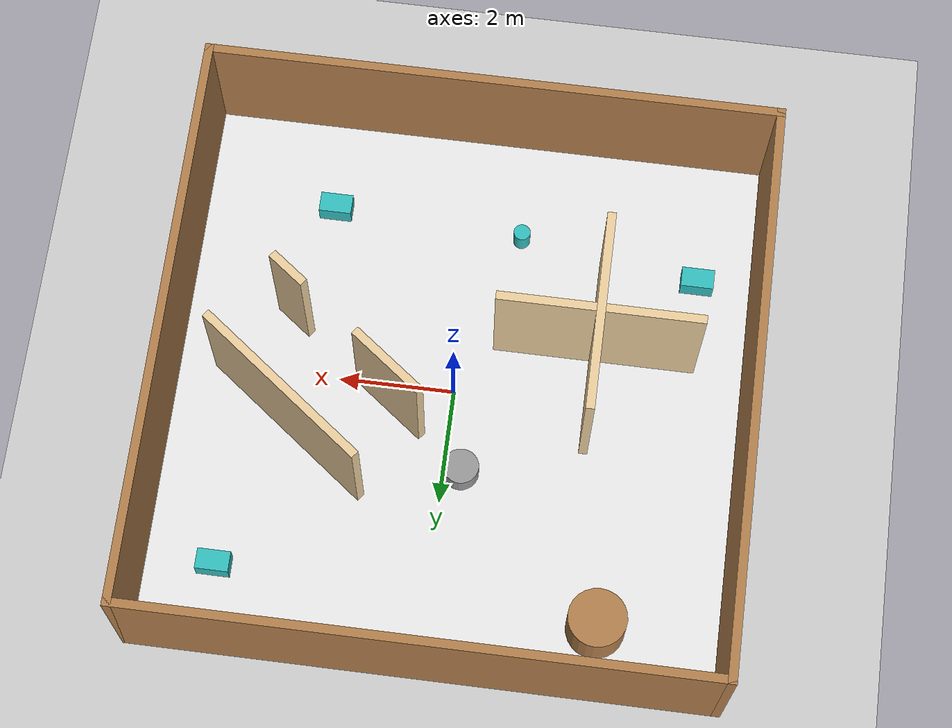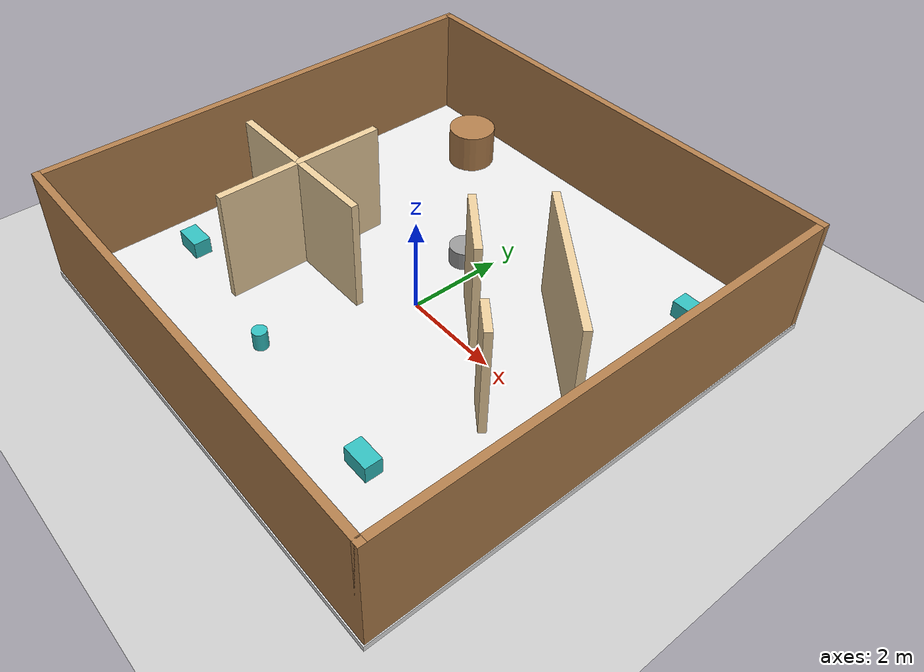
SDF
<sdf version="1.7">
 <world name="default">
  <light name="sun" type="directional">
   <pose>0 0 10 0 -0 0</pose>
   <diffuse>0.8 0.8 0.8 1</diffuse>
   <specular>0.2 0.2 0.2 1</specular>
   <attenuation>
    <range>1000</range>
    <constant>0.9</constant>
    <linear>0.01</linear>
    <quadratic>0.001</quadratic>
   </attenuation>
   <direction>-0.5 0.1 -0.9</direction>
   <spot><inner_angle>0</inner_angle><outer_angle>0</outer_angle><falloff>0</falloff></spot>
  </light>
  <model name="ground_plane">
   <static>1</static>
   <link name="link">
    <collision name="collision">
     <geometry><plane><normal>0 0 1</normal><size>100 100</size></plane></geometry>
     <surface>
      <contact><collide_bitmask>65535</collide_bitmask></contact>
      <friction><ode><mu>100</mu><mu2>50</mu2></ode></friction>
     </surface>
    </collision>
    <visual name="visual">
     <cast_shadows>0</cast_shadows>
     <geometry><plane><normal>0 0 1</normal><size>100 100</size></plane></geometry>
     <material>
      <script><uri>file://media/materials/scripts/gazebo.material</uri><name>Gazebo/Grey</name></script>
     </material>
    </visual>
   </link>
  </model>
  <gravity>0 0 -9.8</gravity>
  <magnetic_field>6e-06 2.3e-05 -4.2e-05</magnetic_field>
  <atmosphere type="adiabatic"/>
  <physics type="ode">
   <max_step_size>0.001</max_step_size>
   <real_time_factor>1</real_time_factor>
   <real_time_update_rate>1000</real_time_update_rate>
  </physics>
  <scene><ambient>0.4 0.4 0.4 1</ambient><background>0.7 0.7 0.7 1</background><shadows>1</shadows></scene>
  <spherical_coordinates>
   <surface_model>EARTH_WGS84</surface_model>
   <latitude_deg>0</latitude_deg>
   <longitude_deg>0</longitude_deg>
   <elevation>0</elevation>
   <heading_deg>0</heading_deg>
  </spherical_coordinates>
  <model name="delimiter">
   <link name="Wall_11">
    <pose>0 4.925 0 0 -0 0</pose>
    <visual name="Wall_11_Visual">
     <pose>0 0 1.25 0 -0 0</pose>
     <geometry><box><size>10 0.15 2.5</size></box></geometry>
     <material>
      <script><uri>file://media/materials/scripts/gazebo.material</uri><name>Gazebo/Wood</name></script>
      <ambient>1 1 1 1</ambient>
      <shader type="pixel"/>
      <emissive>0 0 0 1</emissive>
     </material>
     <meta><layer>0</layer></meta>
    </visual>
    <collision name="Wall_11_Collision">
     <pose>0 0 1.25 0 -0 0</pose>
     <geometry><box><size>10 0.15 2.5</size></box></geometry>
     <surface>
      <friction>
       <ode><mu>1</mu><mu2>1</mu2><fdir1>0 0 0</fdir1><slip1>0</slip1><slip2>0</slip2></ode>
       <torsional>
        <coefficient>1</coefficient>
        <patch_radius>0</patch_radius>
        <surface_radius>0</surface_radius>
        <use_patch_radius>1</use_patch_radius>
        <ode><slip>0</slip></ode>
       </torsional>
      </friction>
      <bounce><restitution_coefficient>0</restitution_coefficient><threshold>1e+06</threshold></bounce>
      <contact>
       <collide_without_contact>0</collide_without_contact>
       <collide_without_contact_bitmask>1</collide_without_contact_bitmask>
       <collide_bitmask>1</collide_bitmask>
       <ode>
        <soft_cfm>0</soft_cfm>
        <soft_erp>0.2</soft_erp>
        <kp>1e+13</kp>
        <kd>1</kd>
        <max_vel>0.01</max_vel>
        <min_depth>0</min_depth>
       </ode>
       <bullet>
        <split_impulse>1</split_impulse>
        <split_impulse_penetration_threshold>-0.01</split_impulse_penetration_threshold>
        <soft_cfm>0</soft_cfm>
        <soft_erp>0.2</soft_erp>
        <kp>1e+13</kp>
        <kd>1</kd>
       </bullet>
      </contact>
     </surface>
    </collision>
   </link>
   <link name="Wall_6">
    <pose>-4.925 0 0 0 -0 1.5708</pose>
    <visual name="Wall_6_Visual">
     <pose>0 0 1.25 0 -0 0</pose>
     <geometry><box><size>10 0.15 2.5</size></box></geometry>
     <material>
      <script><uri>file://media/materials/scripts/gazebo.material</uri><name>Gazebo/Wood</name></script>
      <ambient>1 1 1 1</ambient>
      <shader type="pixel"/>
      <emissive>0 0 0 1</emissive>
     </material>
     <meta><layer>0</layer></meta>
    </visual>
    <collision name="Wall_6_Collision">
     <pose>0 0 1.25 0 -0 0</pose>
     <geometry><box><size>10 0.15 2.5</size></box></geometry>
     <surface>
      <friction>
       <ode><mu>1</mu><mu2>1</mu2><fdir1>0 0 0</fdir1><slip1>0</slip1><slip2>0</slip2></ode>
       <torsional>
        <coefficient>1</coefficient>
        <patch_radius>0</patch_radius>
        <surface_radius>0</surface_radius>
        <use_patch_radius>1</use_patch_radius>
        <ode><slip>0</slip></ode>
       </torsional>
      </friction>
      <bounce><restitution_coefficient>0</restitution_coefficient><threshold>1e+06</threshold></bounce>
      <contact>
       <collide_without_contact>0</collide_without_contact>
       <collide_without_contact_bitmask>1</collide_without_contact_bitmask>
       <collide_bitmask>1</collide_bitmask>
       <ode>
        <soft_cfm>0</soft_cfm>
        <soft_erp>0.2</soft_erp>
        <kp>1e+13</kp>
        <kd>1</kd>
        <max_vel>0.01</max_vel>
        <min_depth>0</min_depth>
       </ode>
       <bullet>
        <split_impulse>1</split_impulse>
        <split_impulse_penetration_threshold>-0.01</split_impulse_penetration_threshold>
        <soft_cfm>0</soft_cfm>
        <soft_erp>0.2</soft_erp>
        <kp>1e+13</kp>
        <kd>1</kd>
       </bullet>
      </contact>
     </surface>
    </collision>
   </link>
   <link name="Wall_8">
    <pose>0 -4.925 0 0 -0 0</pose>
    <inertial>
     <mass>1</mass>
     <inertia><ixx>1</ixx><ixy>0</ixy><ixz>0</ixz><iyy>1</iyy><iyz>0</iyz><izz>1</izz></inertia>
    </inertial>
    <visual name="Wall_8_Visual">
     <pose>0 0 1.25 0 -0 0</pose>
     <geometry><box><size>10 0.15 2.5</size></box></geometry>
     <material>
      <script><uri>file://media/materials/scripts/gazebo.material</uri><name>Gazebo/Wood</name></script>
      <ambient>1 1 1 1</ambient>
      <shader type="pixel"><normal_map>__default__</normal_map></shader>
      <emissive>0 0 0 1</emissive>
      <diffuse>1 1 1 1</diffuse>
      <specular>0.2 0.2 0.2 1</specular>
     </material>
     <meta><layer>0</layer></meta>
    </visual>
    <collision name="Wall_8_Collision">
     <pose>0 0 1.25 0 -0 0</pose>
     <geometry><box><size>10 0.15 2.5</size></box></geometry>
     <surface>
      <friction>
       <ode><mu>1</mu><mu2>1</mu2><fdir1>0 0 0</fdir1><slip1>0</slip1><slip2>0</slip2></ode>
       <torsional>
        <coefficient>1</coefficient>
        <patch_radius>0</patch_radius>
        <surface_radius>0</surface_radius>
        <use_patch_radius>1</use_patch_radius>
        <ode><slip>0</slip></ode>
       </torsional>
      </friction>
      <bounce><restitution_coefficient>0</restitution_coefficient><threshold>1e+06</threshold></bounce>
      <contact>
       <collide_without_contact>0</collide_without_contact>
       <collide_without_contact_bitmask>1</collide_without_contact_bitmask>
       <collide_bitmask>1</collide_bitmask>
       <ode>
        <soft_cfm>0</soft_cfm>
        <soft_erp>0.2</soft_erp>
        <kp>1e+13</kp>
        <kd>1</kd>
        <max_vel>0.01</max_vel>
        <min_depth>0</min_depth>
       </ode>
       <bullet>
        <split_impulse>1</split_impulse>
        <split_impulse_penetration_threshold>-0.01</split_impulse_penetration_threshold>
        <soft_cfm>0</soft_cfm>
        <soft_erp>0.2</soft_erp>
        <kp>1e+13</kp>
        <kd>1</kd>
       </bullet>
      </contact>
     </surface>
    </collision>
   </link>
   <link name="Wall_9">
    <pose>4.925 0 0 0 -0 1.5708</pose>
    <visual name="Wall_9_Visual">
     <pose>0 0 1.25 0 -0 0</pose>
     <geometry><box><size>10 0.15 2.5</size></box></geometry>
     <material>
      <script><uri>file://media/materials/scripts/gazebo.material</uri><name>Gazebo/Wood</name></script>
      <ambient>1 1 1 1</ambient>
      <shader type="pixel"/>
      <emissive>0 0 0 1</emissive>
     </material>
     <meta><layer>0</layer></meta>
    </visual>
    <collision name="Wall_9_Collision">
     <pose>0 0 1.25 0 -0 0</pose>
     <geometry><box><size>10 0.15 2.5</size></box></geometry>
     <surface>
      <friction>
       <ode><mu>1</mu><mu2>1</mu2><fdir1>0 0 0</fdir1><slip1>0</slip1><slip2>0</slip2></ode>
       <torsional>
        <coefficient>1</coefficient>
        <patch_radius>0</patch_radius>
        <surface_radius>0</surface_radius>
        <use_patch_radius>1</use_patch_radius>
        <ode><slip>0</slip></ode>
       </torsional>
      </friction>
      <bounce><restitution_coefficient>0</restitution_coefficient><threshold>1e+06</threshold></bounce>
      <contact>
       <collide_without_contact>0</collide_without_contact>
       <collide_without_contact_bitmask>1</collide_without_contact_bitmask>
       <collide_bitmask>1</collide_bitmask>
       <ode>
        <soft_cfm>0</soft_cfm>
        <soft_erp>0.2</soft_erp>
        <kp>1e+13</kp>
        <kd>1</kd>
        <max_vel>0.01</max_vel>
        <min_depth>0</min_depth>
       </ode>
       <bullet>
        <split_impulse>1</split_impulse>
        <split_impulse_penetration_threshold>-0.01</split_impulse_penetration_threshold>
        <soft_cfm>0</soft_cfm>
        <soft_erp>0.2</soft_erp>
        <kp>1e+13</kp>
        <kd>1</kd>
       </bullet>
      </contact>
     </surface>
    </collision>
   </link>
   <link name="link_0">
    <inertial>
     <mass>0.118338</mass>
     <inertia><ixx>0.986289</ixx><ixy>0</ixy><ixz>0</ixz><iyy>0.986289</iyy><iyz>0</iyz><izz>1.9723</izz></inertia>
    </inertial>
    <pose>0.016005 -0.024248 0.089599 0 -0 0</pose>
    <visual name="visual">
     <geometry><box><size>10 10 0.118336</size></box></geometry>
     <material>
      <script><uri>file://media/materials/scripts/gazebo.material</uri><name>Gazebo/White</name></script>
      <ambient>1 1 1 1</ambient>
      <shader type="pixel"/>
      <emissive>0 0 0 1</emissive>
     </material>
    </visual>
    <collision name="collision">
     <geometry><box><size>10 10 0.118336</size></box></geometry>
     <surface>
      <friction>
       <ode><mu>1</mu><mu2>1</mu2><fdir1>0 0 0</fdir1><slip1>0</slip1><slip2>0</slip2></ode>
       <torsional>
        <coefficient>1</coefficient>
        <patch_radius>0</patch_radius>
        <surface_radius>0</surface_radius>
        <use_patch_radius>1</use_patch_radius>
        <ode><slip>0</slip></ode>
       </torsional>
      </friction>
      <bounce><restitution_coefficient>0</restitution_coefficient><threshold>1e+06</threshold></bounce>
      <contact>
       <collide_without_contact>0</collide_without_contact>
       <collide_without_contact_bitmask>1</collide_without_contact_bitmask>
       <collide_bitmask>1</collide_bitmask>
       <ode>
        <soft_cfm>0</soft_cfm>
        <soft_erp>0.2</soft_erp>
        <kp>1e+13</kp>
        <kd>1</kd>
        <max_vel>0.01</max_vel>
        <min_depth>0</min_depth>
       </ode>
       <bullet>
        <split_impulse>1</split_impulse>
        <split_impulse_penetration_threshold>-0.01</split_impulse_penetration_threshold>
        <soft_cfm>0</soft_cfm>
        <soft_erp>0.2</soft_erp>
        <kp>1e+13</kp>
        <kd>1</kd>
       </bullet>
      </contact>
     </surface>
    </collision>
   </link>
   <joint name="link_0_JOINT_2" type="fixed">
    <parent>link_0</parent>
    <child>Wall_6</child>
    <physics>
     <ode><limit><cfm>0</cfm><erp>0.2</erp></limit><suspension><cfm>0</cfm><erp>0.2</erp></suspension></ode>
    </physics>
   </joint>
   <joint name="link_0_JOINT_3" type="fixed">
    <parent>link_0</parent>
    <child>Wall_11</child>
    <physics>
     <ode><limit><cfm>0</cfm><erp>0.2</erp></limit><suspension><cfm>0</cfm><erp>0.2</erp></suspension></ode>
    </physics>
   </joint>
   <joint name="link_0_JOINT_4" type="fixed">
    <parent>link_0</parent>
    <child>Wall_9</child>
    <physics>
     <ode><limit><cfm>0</cfm><erp>0.2</erp></limit><suspension><cfm>0</cfm><erp>0.2</erp></suspension></ode>
    </physics>
   </joint>
   <joint name="link_0_JOINT_5" type="fixed">
    <parent>link_0</parent>
    <child>Wall_8</child>
    <physics>
     <ode><limit><cfm>0</cfm><erp>0.2</erp></limit><suspension><cfm>0</cfm><erp>0.2</erp></suspension></ode>
    </physics>
   </joint>
   <static>1</static>
   <pose>-0.075393 0.086884 0 0 -0 0</pose>
  </model>
  <model name="obstacles_for_training">
   <link name="link_0">
    <inertial>
     <mass>0.0705021</mass>
     <inertia>
      <ixx>0.00146073</ixx>
      <ixy>0</ixy>
      <ixz>0</ixz>
      <iyy>0.00262179</iyy>
      <iyz>0</iyz>
      <izz>0.00261916</izz>
     </inertia>
    </inertial>
    <pose>-3.22768 -3.81031 0.071427 0 -0 0</pose>
    <visual name="visual">
     <geometry><box><size>0.567196 0.352264 0.352899</size></box></geometry>
     <material>
      <lighting>1</lighting>
      <script><uri>file://media/materials/scripts/gazebo.material</uri><name>Gazebo/Turquoise</name></script>
      <shader type="pixel"/>
     </material>
    </visual>
    <collision name="collision">
     <geometry><box><size>0.567196 0.352264 0.352899</size></box></geometry>
     <surface>
      <friction>
       <ode><mu>1</mu><mu2>1</mu2><fdir1>0 0 0</fdir1><slip1>0</slip1><slip2>0</slip2></ode>
       <torsional>
        <coefficient>1</coefficient>
        <patch_radius>0</patch_radius>
        <surface_radius>0</surface_radius>
        <use_patch_radius>1</use_patch_radius>
        <ode><slip>0</slip></ode>
       </torsional>
      </friction>
      <bounce><restitution_coefficient>0</restitution_coefficient><threshold>1e+06</threshold></bounce>
      <contact>
       <collide_without_contact>0</collide_without_contact>
       <collide_without_contact_bitmask>1</collide_without_contact_bitmask>
       <collide_bitmask>1</collide_bitmask>
       <ode>
        <soft_cfm>0</soft_cfm>
        <soft_erp>0.2</soft_erp>
        <kp>1e+13</kp>
        <kd>1</kd>
        <max_vel>0.01</max_vel>
        <min_depth>0</min_depth>
       </ode>
       <bullet>
        <split_impulse>1</split_impulse>
        <split_impulse_penetration_threshold>-0.01</split_impulse_penetration_threshold>
        <soft_cfm>0</soft_cfm>
        <soft_erp>0.2</soft_erp>
        <kp>1e+13</kp>
        <kd>1</kd>
       </bullet>
      </contact>
     </surface>
    </collision>
   </link>
   <link name="link_0_clone">
    <inertial>
     <mass>0.0705021</mass>
     <inertia>
      <ixx>0.00146073</ixx>
      <ixy>0</ixy>
      <ixz>0</ixz>
      <iyy>0.00262179</iyy>
      <iyz>0</iyz>
      <izz>0.00261916</izz>
     </inertia>
    </inertial>
    <pose>4.35308 2.29911 0.071416 0 -0 0</pose>
    <visual name="visual">
     <geometry><box><size>0.567196 0.352264 0.352899</size></box></geometry>
     <material>
      <lighting>1</lighting>
      <script><uri>file://media/materials/scripts/gazebo.material</uri><name>Gazebo/Turquoise</name></script>
      <shader type="pixel"/>
     </material>
    </visual>
    <collision name="collision">
     <geometry><box><size>0.567196 0.352264 0.352899</size></box></geometry>
     <surface>
      <friction>
       <ode><mu>1</mu><mu2>1</mu2><fdir1>0 0 0</fdir1><slip1>0</slip1><slip2>0</slip2></ode>
       <torsional>
        <coefficient>1</coefficient>
        <patch_radius>0</patch_radius>
        <surface_radius>0</surface_radius>
        <use_patch_radius>1</use_patch_radius>
        <ode><slip>0</slip></ode>
       </torsional>
      </friction>
      <bounce><restitution_coefficient>0</restitution_coefficient><threshold>1e+06</threshold></bounce>
      <contact>
       <collide_without_contact>0</collide_without_contact>
       <collide_without_contact_bitmask>1</collide_without_contact_bitmask>
       <collide_bitmask>1</collide_bitmask>
       <ode>
        <soft_cfm>0</soft_cfm>
        <soft_erp>0.2</soft_erp>
        <kp>1e+13</kp>
        <kd>1</kd>
        <max_vel>0.01</max_vel>
        <min_depth>0</min_depth>
       </ode>
       <bullet>
        <split_impulse>1</split_impulse>
        <split_impulse_penetration_threshold>-0.01</split_impulse_penetration_threshold>
        <soft_cfm>0</soft_cfm>
        <soft_erp>0.2</soft_erp>
        <kp>1e+13</kp>
        <kd>1</kd>
       </bullet>
      </contact>
     </surface>
    </collision>
   </link>
   <link name="link_0_clone_0">
    <inertial>
     <mass>0.0705021</mass>
     <inertia>
      <ixx>0.00146073</ixx>
      <ixy>0</ixy>
      <ixz>0</ixz>
      <iyy>0.00262179</iyy>
      <iyz>0</iyz>
      <izz>0.00261916</izz>
     </inertia>
    </inertial>
    <pose>3.25753 -4.42893 0.071426 0 -0 0</pose>
    <visual name="visual">
     <geometry><box><size>0.567196 0.352264 0.352899</size></box></geometry>
     <material>
      <lighting>1</lighting>
      <script><uri>file://media/materials/scripts/gazebo.material</uri><name>Gazebo/Turquoise</name></script>
      <shader type="pixel"/>
     </material>
    </visual>
    <collision name="collision">
     <geometry><box><size>0.567196 0.352264 0.352899</size></box></geometry>
     <surface>
      <friction>
       <ode><mu>1</mu><mu2>1</mu2><fdir1>0 0 0</fdir1><slip1>0</slip1><slip2>0</slip2></ode>
       <torsional>
        <coefficient>1</coefficient>
        <patch_radius>0</patch_radius>
        <surface_radius>0</surface_radius>
        <use_patch_radius>1</use_patch_radius>
        <ode><slip>0</slip></ode>
       </torsional>
      </friction>
      <bounce><restitution_coefficient>0</restitution_coefficient><threshold>1e+06</threshold></bounce>
      <contact>
       <collide_without_contact>0</collide_without_contact>
       <collide_without_contact_bitmask>1</collide_without_contact_bitmask>
       <collide_bitmask>1</collide_bitmask>
       <ode>
        <soft_cfm>0</soft_cfm>
        <soft_erp>0.2</soft_erp>
        <kp>1e+13</kp>
        <kd>1</kd>
        <max_vel>0.01</max_vel>
        <min_depth>0</min_depth>
       </ode>
       <bullet>
        <split_impulse>1</split_impulse>
        <split_impulse_penetration_threshold>-0.01</split_impulse_penetration_threshold>
        <soft_cfm>0</soft_cfm>
        <soft_erp>0.2</soft_erp>
        <kp>1e+13</kp>
        <kd>1</kd>
       </bullet>
      </contact>
     </surface>
    </collision>
   </link>
   <link name="link_1">
    <inertial>
     <mass>0.0363387</mass>
     <inertia>
      <ixx>0.000739578</ixx>
      <ixy>0</ixy>
      <ixz>0</ixz>
      <iyy>0.000739578</iyy>
      <iyz>0</iyz>
      <izz>0.000389055</izz>
     </inertia>
    </inertial>
    <pose>-0.077079 -4.26594 0.071422 0 -0 0</pose>
    <visual name="visual">
     <geometry><cylinder><radius>0.146331</radius><length>0.424252</length></cylinder></geometry>
     <material>
      <lighting>1</lighting>
      <script><uri>file://media/materials/scripts/gazebo.material</uri><name>Gazebo/Turquoise</name></script>
      <shader type="pixel"/>
     </material>
    </visual>
    <collision name="collision">
     <geometry><cylinder><radius>0.146331</radius><length>0.424252</length></cylinder></geometry>
     <surface>
      <friction>
       <ode><mu>1</mu><mu2>1</mu2><fdir1>0 0 0</fdir1><slip1>0</slip1><slip2>0</slip2></ode>
       <torsional>
        <coefficient>1</coefficient>
        <patch_radius>0</patch_radius>
        <surface_radius>0</surface_radius>
        <use_patch_radius>1</use_patch_radius>
        <ode><slip>0</slip></ode>
       </torsional>
      </friction>
      <bounce><restitution_coefficient>0</restitution_coefficient><threshold>1e+06</threshold></bounce>
      <contact>
       <collide_without_contact>0</collide_without_contact>
       <collide_without_contact_bitmask>1</collide_without_contact_bitmask>
       <collide_bitmask>1</collide_bitmask>
       <ode>
        <soft_cfm>0</soft_cfm>
        <soft_erp>0.2</soft_erp>
        <kp>1e+13</kp>
        <kd>1</kd>
        <max_vel>0.01</max_vel>
        <min_depth>0</min_depth>
       </ode>
       <bullet>
        <split_impulse>1</split_impulse>
        <split_impulse_penetration_threshold>-0.01</split_impulse_penetration_threshold>
        <soft_cfm>0</soft_cfm>
        <soft_erp>0.2</soft_erp>
        <kp>1e+13</kp>
        <kd>1</kd>
       </bullet>
      </contact>
     </surface>
    </collision>
   </link>
   <link name="link_1_clone">
    <inertial>
     <mass>0.159286</mass>
     <inertia>
      <ixx>0.00612654</ixx>
      <ixy>0</ixy>
      <ixz>0</ixz>
      <iyy>0.00612654</iyy>
      <iyz>0</iyz>
      <izz>0.00747476</izz>
     </inertia>
    </inertial>
    <pose>0.445978 0.153609 0.071427 0 -0 0</pose>
    <visual name="visual">
     <geometry><cylinder><radius>0.306355</radius><length>0.424252</length></cylinder></geometry>
     <material>
      <lighting>1</lighting>
      <script><uri>file://media/materials/scripts/gazebo.material</uri><name>Gazebo/Grey</name></script>
      <shader type="pixel"><normal_map>__default__</normal_map></shader>
      <ambient>0.3 0.3 0.3 1</ambient>
      <diffuse>0.7 0.7 0.7 1</diffuse>
      <specular>0.01 0.01 0.01 1</specular>
      <emissive>0 0 0 1</emissive>
     </material>
    </visual>
    <collision name="collision">
     <geometry><cylinder><radius>0.306355</radius><length>0.424252</length></cylinder></geometry>
     <surface>
      <friction>
       <ode><mu>1</mu><mu2>1</mu2><fdir1>0 0 0</fdir1><slip1>0</slip1><slip2>0</slip2></ode>
       <torsional>
        <coefficient>1</coefficient>
        <patch_radius>0</patch_radius>
        <surface_radius>0</surface_radius>
        <use_patch_radius>1</use_patch_radius>
        <ode><slip>0</slip></ode>
       </torsional>
      </friction>
      <bounce><restitution_coefficient>0</restitution_coefficient><threshold>1e+06</threshold></bounce>
      <contact>
       <collide_without_contact>0</collide_without_contact>
       <collide_without_contact_bitmask>1</collide_without_contact_bitmask>
       <collide_bitmask>1</collide_bitmask>
       <ode>
        <soft_cfm>0</soft_cfm>
        <soft_erp>0.2</soft_erp>
        <kp>1e+13</kp>
        <kd>1</kd>
        <max_vel>0.01</max_vel>
        <min_depth>0</min_depth>
       </ode>
       <bullet>
        <split_impulse>1</split_impulse>
        <split_impulse_penetration_threshold>-0.01</split_impulse_penetration_threshold>
        <soft_cfm>0</soft_cfm>
        <soft_erp>0.2</soft_erp>
        <kp>1e+13</kp>
        <kd>1</kd>
       </bullet>
      </contact>
     </surface>
    </collision>
   </link>
   <link name="link_1_clone_clone">
    <inertial>
     <mass>1.29275</mass>
     <inertia>
      <ixx>0.266165</ixx>
      <ixy>0</ixy>
      <ixz>0</ixz>
      <iyy>0.266165</iyy>
      <iyz>0</iyz>
      <izz>0.158601</izz>
     </inertia>
    </inertial>
    <pose>-2.11708 2.58713 0.07141 0 -0 0</pose>
    <visual name="visual">
     <geometry><cylinder><radius>0.495349</radius><length>1.31703</length></cylinder></geometry>
     <material>
      <lighting>1</lighting>
      <script><uri>file://media/materials/scripts/gazebo.material</uri><name>Gazebo/Wood</name></script>
      <shader type="pixel"><normal_map>__default__</normal_map></shader>
     </material>
    </visual>
    <collision name="collision">
     <geometry><cylinder><radius>0.495349</radius><length>1.31703</length></cylinder></geometry>
     <surface>
      <friction>
       <ode><mu>1</mu><mu2>1</mu2><fdir1>0 0 0</fdir1><slip1>0</slip1><slip2>0</slip2></ode>
       <torsional>
        <coefficient>1</coefficient>
        <patch_radius>0</patch_radius>
        <surface_radius>0</surface_radius>
        <use_patch_radius>1</use_patch_radius>
        <ode><slip>0</slip></ode>
       </torsional>
      </friction>
      <bounce><restitution_coefficient>0</restitution_coefficient><threshold>1e+06</threshold></bounce>
      <contact>
       <collide_without_contact>0</collide_without_contact>
       <collide_without_contact_bitmask>1</collide_without_contact_bitmask>
       <collide_bitmask>1</collide_bitmask>
       <ode>
        <soft_cfm>0</soft_cfm>
        <soft_erp>0.2</soft_erp>
        <kp>1e+13</kp>
        <kd>1</kd>
        <max_vel>0.01</max_vel>
        <min_depth>0</min_depth>
       </ode>
       <bullet>
        <split_impulse>1</split_impulse>
        <split_impulse_penetration_threshold>-0.01</split_impulse_penetration_threshold>
        <soft_cfm>0</soft_cfm>
        <soft_erp>0.2</soft_erp>
        <kp>1e+13</kp>
        <kd>1</kd>
       </bullet>
      </contact>
     </surface>
    </collision>
   </link>
   <static>0</static>
   <pose>-0.757258 1.32312 0.25376 1e-06 9e-06 -0.001374</pose>
  </model>
  <model name="aisle_door">
   <link name="Wall_17">
    <pose>0.6075 -3.1265 0 0 -0 3.14159</pose>
    <visual name="Wall_17_Visual">
     <pose>0 0 1.25 0 -0 0</pose>
     <geometry><box><size>0.75 0.15 2.5</size></box></geometry>
     <material>
      <script><uri>file://media/materials/scripts/gazebo.material</uri><name>Gazebo/Grey</name></script>
      <ambient>0.921569 0.807843 0.615686 1</ambient>
      <shader type="pixel"/>
     </material>
     <meta><layer>0</layer></meta>
    </visual>
    <collision name="Wall_17_Collision">
     <pose>0 0 1.25 0 -0 0</pose>
     <geometry><box><size>0.75 0.15 2.5</size></box></geometry>
     <surface>
      <friction>
       <ode><mu>1</mu><mu2>1</mu2><fdir1>0 0 0</fdir1><slip1>0</slip1><slip2>0</slip2></ode>
       <torsional>
        <coefficient>1</coefficient>
        <patch_radius>0</patch_radius>
        <surface_radius>0</surface_radius>
        <use_patch_radius>1</use_patch_radius>
        <ode><slip>0</slip></ode>
       </torsional>
      </friction>
      <bounce><restitution_coefficient>0</restitution_coefficient><threshold>1e+06</threshold></bounce>
      <contact>
       <collide_without_contact>0</collide_without_contact>
       <collide_without_contact_bitmask>1</collide_without_contact_bitmask>
       <collide_bitmask>1</collide_bitmask>
       <ode>
        <soft_cfm>0</soft_cfm>
        <soft_erp>0.2</soft_erp>
        <kp>1e+13</kp>
        <kd>1</kd>
        <max_vel>0.01</max_vel>
        <min_depth>0</min_depth>
       </ode>
       <bullet>
        <split_impulse>1</split_impulse>
        <split_impulse_penetration_threshold>-0.01</split_impulse_penetration_threshold>
        <soft_cfm>0</soft_cfm>
        <soft_erp>0.2</soft_erp>
        <kp>1e+13</kp>
        <kd>1</kd>
       </bullet>
      </contact>
     </surface>
    </collision>
   </link>
   <link name="Wall_19">
    <pose>-1.7175 -3.1265 0 0 -0 3.14159</pose>
    <visual name="Wall_19_Visual">
     <pose>0 0 1.25 0 -0 0</pose>
     <geometry><box><size>1.5 0.15 2.5</size></box></geometry>
     <material>
      <script><uri>file://media/materials/scripts/gazebo.material</uri><name>Gazebo/Grey</name></script>
      <ambient>0.921569 0.807843 0.615686 1</ambient>
      <shader type="pixel"/>
     </material>
     <meta><layer>0</layer></meta>
    </visual>
    <collision name="Wall_19_Collision">
     <pose>0 0 1.25 0 -0 0</pose>
     <geometry><box><size>1.5 0.15 2.5</size></box></geometry>
     <surface>
      <friction>
       <ode><mu>1</mu><mu2>1</mu2><fdir1>0 0 0</fdir1><slip1>0</slip1><slip2>0</slip2></ode>
       <torsional>
        <coefficient>1</coefficient>
        <patch_radius>0</patch_radius>
        <surface_radius>0</surface_radius>
        <use_patch_radius>1</use_patch_radius>
        <ode><slip>0</slip></ode>
       </torsional>
      </friction>
      <bounce><restitution_coefficient>0</restitution_coefficient><threshold>1e+06</threshold></bounce>
      <contact>
       <collide_without_contact>0</collide_without_contact>
       <collide_without_contact_bitmask>1</collide_without_contact_bitmask>
       <collide_bitmask>1</collide_bitmask>
       <ode>
        <soft_cfm>0</soft_cfm>
        <soft_erp>0.2</soft_erp>
        <kp>1e+13</kp>
        <kd>1</kd>
        <max_vel>0.01</max_vel>
        <min_depth>0</min_depth>
       </ode>
       <bullet>
        <split_impulse>1</split_impulse>
        <split_impulse_penetration_threshold>-0.01</split_impulse_penetration_threshold>
        <soft_cfm>0</soft_cfm>
        <soft_erp>0.2</soft_erp>
        <kp>1e+13</kp>
        <kd>1</kd>
       </bullet>
      </contact>
     </surface>
    </collision>
   </link>
   <link name="Wall_23">
    <pose>-0.751499 -1.6222 0 0 -0 3.14159</pose>
    <visual name="Wall_23_Visual">
     <pose>0 0 1.25 0 -0 0</pose>
     <geometry><box><size>3.5 0.15 2.5</size></box></geometry>
     <material>
      <script><uri>file://media/materials/scripts/gazebo.material</uri><name>Gazebo/Grey</name></script>
      <ambient>0.921569 0.807843 0.615686 1</ambient>
      <shader type="pixel"/>
     </material>
     <meta><layer>0</layer></meta>
    </visual>
    <collision name="Wall_23_Collision">
     <pose>0 0 1.25 0 -0 0</pose>
     <geometry><box><size>3.5 0.15 2.5</size></box></geometry>
     <surface>
      <friction>
       <ode><mu>1</mu><mu2>1</mu2><fdir1>0 0 0</fdir1><slip1>0</slip1><slip2>0</slip2></ode>
       <torsional>
        <coefficient>1</coefficient>
        <patch_radius>0</patch_radius>
        <surface_radius>0</surface_radius>
        <use_patch_radius>1</use_patch_radius>
        <ode><slip>0</slip></ode>
       </torsional>
      </friction>
      <bounce><restitution_coefficient>0</restitution_coefficient><threshold>1e+06</threshold></bounce>
      <contact>
       <collide_without_contact>0</collide_without_contact>
       <collide_without_contact_bitmask>1</collide_without_contact_bitmask>
       <collide_bitmask>1</collide_bitmask>
       <ode>
        <soft_cfm>0</soft_cfm>
        <soft_erp>0.2</soft_erp>
        <kp>1e+13</kp>
        <kd>1</kd>
        <max_vel>0.01</max_vel>
        <min_depth>0</min_depth>
       </ode>
       <bullet>
        <split_impulse>1</split_impulse>
        <split_impulse_penetration_threshold>-0.01</split_impulse_penetration_threshold>
        <soft_cfm>0</soft_cfm>
        <soft_erp>0.2</soft_erp>
        <kp>1e+13</kp>
        <kd>1</kd>
       </bullet>
      </contact>
     </surface>
    </collision>
   </link>
   <static>1</static>
   <pose>4.29504 1.90336 0 0 0 -0.650301</pose>
  </model>
  <model name="wall_cross">
   <link name="Wall_3">
    <pose>-0.761 -2.665 0 0 -0 0</pose>
    <inertial>
     <mass>1</mass>
     <inertia><ixx>1</ixx><ixy>0</ixy><ixz>0</ixz><iyy>1</iyy><iyz>0</iyz><izz>1</izz></inertia>
    </inertial>
    <visual name="Wall_3_Visual">
     <pose>0 0 1.25 0 -0 0</pose>
     <geometry><box><size>3.5 0.15 2.5</size></box></geometry>
     <material>
      <script><uri>file://media/materials/scripts/gazebo.material</uri><name>Gazebo/Grey</name></script>
      <ambient>0.922 0.808 0.616 1</ambient>
      <shader type="pixel"><normal_map>__default__</normal_map></shader>
      <diffuse>0.7 0.7 0.7 1</diffuse>
      <specular>0.01 0.01 0.01 1</specular>
      <emissive>0 0 0 1</emissive>
     </material>
     <meta><layer>0</layer></meta>
    </visual>
    <collision name="Wall_3_Collision">
     <pose>0 0 1.25 0 -0 0</pose>
     <geometry><box><size>3.5 0.15 2.5</size></box></geometry>
     <surface>
      <friction>
       <ode><mu>1</mu><mu2>1</mu2><fdir1>0 0 0</fdir1><slip1>0</slip1><slip2>0</slip2></ode>
       <torsional>
        <coefficient>1</coefficient>
        <patch_radius>0</patch_radius>
        <surface_radius>0</surface_radius>
        <use_patch_radius>1</use_patch_radius>
        <ode><slip>0</slip></ode>
       </torsional>
      </friction>
      <bounce><restitution_coefficient>0</restitution_coefficient><threshold>1e+06</threshold></bounce>
      <contact>
       <collide_without_contact>0</collide_without_contact>
       <collide_without_contact_bitmask>1</collide_without_contact_bitmask>
       <collide_bitmask>1</collide_bitmask>
       <ode>
        <soft_cfm>0</soft_cfm>
        <soft_erp>0.2</soft_erp>
        <kp>1e+13</kp>
        <kd>1</kd>
        <max_vel>0.01</max_vel>
        <min_depth>0</min_depth>
       </ode>
       <bullet>
        <split_impulse>1</split_impulse>
        <split_impulse_penetration_threshold>-0.01</split_impulse_penetration_threshold>
        <soft_cfm>0</soft_cfm>
        <soft_erp>0.2</soft_erp>
        <kp>1e+13</kp>
        <kd>1</kd>
       </bullet>
      </contact>
     </surface>
    </collision>
   </link>
   <link name="Wall_5">
    <pose>-0.763 -2.6355 0 0 0 -1.5708</pose>
    <inertial>
     <mass>1</mass>
     <inertia><ixx>1</ixx><ixy>0</ixy><ixz>0</ixz><iyy>1</iyy><iyz>0</iyz><izz>1</izz></inertia>
    </inertial>
    <visual name="Wall_5_Visual">
     <pose>0 0 1.25 0 -0 0</pose>
     <geometry><box><size>3.5 0.15 2.5</size></box></geometry>
     <material>
      <script><uri>file://media/materials/scripts/gazebo.material</uri><name>Gazebo/Grey</name></script>
      <ambient>0.922 0.808 0.616 1</ambient>
      <shader type="pixel"><normal_map>__default__</normal_map></shader>
      <diffuse>0.7 0.7 0.7 1</diffuse>
      <specular>0.01 0.01 0.01 1</specular>
      <emissive>0 0 0 1</emissive>
     </material>
     <meta><layer>0</layer></meta>
    </visual>
    <collision name="Wall_5_Collision">
     <pose>0 0 1.25 0 -0 0</pose>
     <geometry><box><size>3.5 0.15 2.5</size></box></geometry>
     <surface>
      <friction>
       <ode><mu>1</mu><mu2>1</mu2><fdir1>0 0 0</fdir1><slip1>0</slip1><slip2>0</slip2></ode>
       <torsional>
        <coefficient>1</coefficient>
        <patch_radius>0</patch_radius>
        <surface_radius>0</surface_radius>
        <use_patch_radius>1</use_patch_radius>
        <ode><slip>0</slip></ode>
       </torsional>
      </friction>
      <bounce><restitution_coefficient>0</restitution_coefficient><threshold>1e+06</threshold></bounce>
      <contact>
       <collide_without_contact>0</collide_without_contact>
       <collide_without_contact_bitmask>1</collide_without_contact_bitmask>
       <collide_bitmask>1</collide_bitmask>
       <ode>
        <soft_cfm>0</soft_cfm>
        <soft_erp>0.2</soft_erp>
        <kp>1e+13</kp>
        <kd>1</kd>
        <max_vel>0.01</max_vel>
        <min_depth>0</min_depth>
       </ode>
       <bullet>
        <split_impulse>1</split_impulse>
        <split_impulse_penetration_threshold>-0.01</split_impulse_penetration_threshold>
        <soft_cfm>0</soft_cfm>
        <soft_erp>0.2</soft_erp>
        <kp>1e+13</kp>
        <kd>1</kd>
       </bullet>
      </contact>
     </surface>
    </collision>
   </link>
   <static>1</static>
   <pose>-1.57564 1.7568 0 0 -0 0</pose>
  </model>
 </world>
</sdf>
